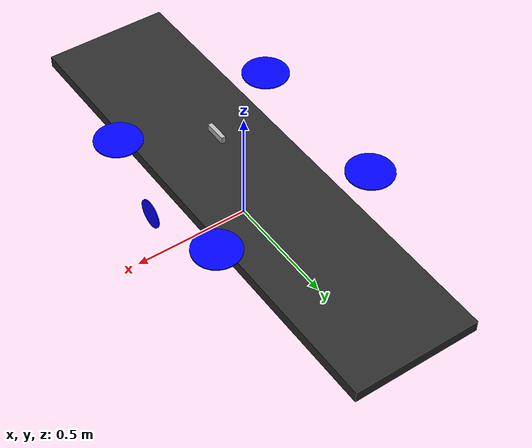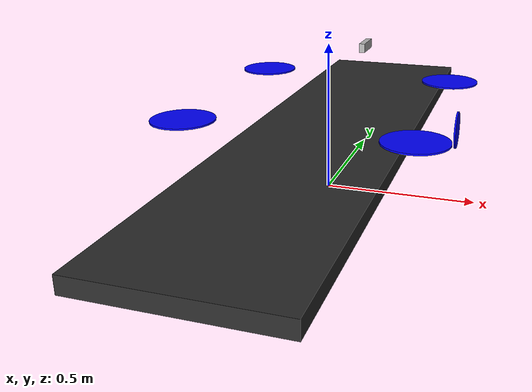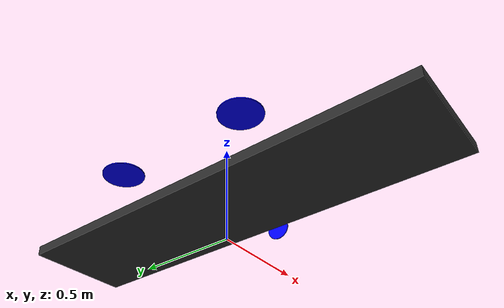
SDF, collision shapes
<?xml version="1.0"?>
<sdf version='1.10'>
  <model name='CAU_vtol'>
    <pose>0 0 0.246 0 0 0</pose>
    <include merge='true'>
      <uri>model://OakD-Lite</uri>
      <pose>.12 .03 .242 0 0 0</pose>
    </include>
    <joint name="CameraJoint" type="fixed">
      <parent>base_link</parent>
      <child>OakD-Lite/base_link</child>
      <pose relative_to="base_link">.12 .03 .242 0 0 0</pose>
    </joint>
    <link name='base_link'>
      <pose>0 0 0 0 0 0</pose>
      <inertial>
        <pose>0 0 0 0 0 0</pose>
        <mass>7</mass>
        <inertia>
          <ixx>1.036586375</ixx>
          <ixy>0.025481228</ixy>
          <ixz>0.04139701</ixz>
          <iyy>0.684859918</iyy>
          <iyz>-0.261749959</iyz>
          <izz>1.287945506</izz>
        </inertia>
      </inertial>
      <collision name='base_link_collision'>
        <pose>0 0 -0.07 0 0 0</pose>
        <geometry>
          <box>
            <size>0.55 2.144 0.05</size>
          </box>
        </geometry>
        <surface>
          <contact>
            <ode>
              <kp>100000</kp>
              <kd>1.0</kd>
              <max_vel>0.1</max_vel>
              <min_depth>0.001</min_depth>
            </ode>
          </contact>
          <friction>
            <ode/>
          </friction>
        </surface>
      </collision>
      <visual name='base_link_visual'>
        <pose>0.13 0 0 0 0 3.1415926536</pose>
        <geometry>
          <mesh>
            <scale>1 1 1</scale>
            <uri>model://CAU_vtol/meshes/test.dae</uri>
          </mesh>
        </geometry>
        <material>
          <ambient>.175 .175 .175 1.0</ambient>
          <diffuse>.175 .175 .175 1.0</diffuse>
        </material>
      </visual>

      <gravity>1</gravity>
      <velocity_decay/>
      <self_collide>0</self_collide>
       <sensor name="imu_sensor" type="imu">
        <always_on>1</always_on>
        <update_rate>250</update_rate>
        <imu>
          <angular_velocity>
            <x>
              <noise type="gaussian">
                <mean>0</mean>
                <stddev>0.0003394</stddev>
                <dynamic_bias_stddev>3.8785e-05</dynamic_bias_stddev>
                <dynamic_bias_correlation_time>1000</dynamic_bias_correlation_time>
              </noise>
            </x>
            <y>
              <noise type="gaussian">
                <mean>0</mean>
                <stddev>0.0003394</stddev>
                <dynamic_bias_stddev>3.8785e-05</dynamic_bias_stddev>
                <dynamic_bias_correlation_time>1000</dynamic_bias_correlation_time>
              </noise>
            </y>
            <z>
              <noise type="gaussian">
                <mean>0</mean>
                <stddev>0.0003394</stddev>
                <dynamic_bias_stddev>3.8785e-05</dynamic_bias_stddev>
                <dynamic_bias_correlation_time>1000</dynamic_bias_correlation_time>
              </noise>
            </z>
          </angular_velocity>
          <linear_acceleration>
            <x>
              <noise type="gaussian">
                <mean>0</mean>
                <stddev>0.004</stddev>
                <dynamic_bias_stddev>0.006</dynamic_bias_stddev>
                <dynamic_bias_correlation_time>300</dynamic_bias_correlation_time>
              </noise>
            </x>
            <y>
              <noise type="gaussian">
                <mean>0</mean>
                <stddev>0.004</stddev>
                <dynamic_bias_stddev>0.006</dynamic_bias_stddev>
                <dynamic_bias_correlation_time>300</dynamic_bias_correlation_time>
              </noise>
            </y>
            <z>
              <noise type="gaussian">
                <mean>0</mean>
                <stddev>0.004</stddev>
                <dynamic_bias_stddev>0.006</dynamic_bias_stddev>
                <dynamic_bias_correlation_time>300</dynamic_bias_correlation_time>
              </noise>
            </z>
          </linear_acceleration>
        </imu>
      </sensor>
      <sensor name="air_pressure_sensor" type="air_pressure">
        <always_on>1</always_on>
        <update_rate>50</update_rate>
        <air_pressure>
          <pressure>
            <noise type="gaussian">
              <mean>0</mean>
              <stddev>0.01</stddev>
            </noise>
          </pressure>
        </air_pressure>
      </sensor>
      <sensor name="navsat_sensor" type="navsat">
        <always_on>1</always_on>
        <update_rate>30</update_rate>
      </sensor>
      <sensor name="air_speed" type="air_speed">
        <always_on>1</always_on>
        <update_rate>30</update_rate>
        <visualize>true</visualize>
        <topic>air_pressure</topic>
        <enable_metrics>true</enable_metrics>
        <air_speed>
          <pressure>
            <noise type="gaussian">
              <mean>0.2</mean>
              <stddev>0.1</stddev>
            </noise>
          </pressure>
        </air_speed>
      </sensor>
    </link>
    <link name='rotor_0'>
      <pose>0.357 -0.353 0.07 0 0 0</pose>
      <inertial>
        <pose>0 0 0 0 0 0</pose>
        <mass>0.298</mass>
        <inertia>
          <ixx>1.57454637e-04</ixx>
          <ixy>1.3475028e-05</ixy>
          <ixz>-2.225054e-06</ixz>
          <iyy>7.7133057e-05</iyy>
          <iyz>6.231596e-06</iyz>
          <izz>1.60905765e-04</izz>
        </inertia>
      </inertial>
      <collision name='rotor_0_collision'>
        <pose>0 0 0 0 0 0</pose>
        <geometry>
          <cylinder>
            <length>0.005</length>
            <radius>0.1</radius>
          </cylinder>
        </geometry>
        <surface>
          <contact>
            <ode/>
          </contact>
          <friction>
            <ode/>
          </friction>
        </surface>
      </collision>
      <visual name='rotor_0_visual'>
        <pose>0 0 0 0 0 0</pose>
        <geometry>
          <mesh>
            <scale>1 1 1</scale>
            <uri>model://CAU_vtol/meshes/iris_prop_ccw.dae</uri>
          </mesh>
        </geometry>
        <material>
          <ambient>0 0 1 1.0</ambient>
          <diffuse>0 0 1 1.0</diffuse>
        </material>
      </visual>
      <gravity>1</gravity>
      <velocity_decay/>
      <self_collide>0</self_collide>
    </link>
    <joint name='rotor_0_joint' type='revolute'>
      <child>rotor_0</child>
      <parent>base_link</parent>
      <axis>
        <xyz>0 0 1</xyz>
        <limit>
          <lower>-1e+16</lower>
          <upper>1e+16</upper>
        </limit>
        <dynamics>
          <spring_reference>0</spring_reference>
          <spring_stiffness>0</spring_stiffness>
        </dynamics>
      </axis>
    </joint>
    <link name='rotor_1'>
      <pose>-0.35 0.347 0.07 0 0 0</pose>
      <inertial>
        <pose>0 0 0 0 0 0</pose>
        <mass>0.298</mass>
        <inertia>
          <ixx>1.57454637e-04</ixx>
          <ixy>1.3475028e-05</ixy>
          <ixz>-2.225054e-06</ixz>
          <iyy>7.7133057e-05</iyy>
          <iyz>6.231596e-06</iyz>
          <izz>1.60905765e-04</izz>
        </inertia>
      </inertial>
      <collision name='rotor_1_collision'>
        <pose>0 0 0 0 0 0</pose>
        <geometry>
          <cylinder>
            <length>0.005</length>
            <radius>0.1</radius>
          </cylinder>
        </geometry>
        <surface>
          <contact>
            <ode/>
          </contact>
          <friction>
            <ode/>
          </friction>
        </surface>
      </collision>
      <visual name='rotor_1_visual'>
        <pose>0 0 0 0 0 0</pose>
        <geometry>
          <mesh>
            <scale>1 1 1</scale>
            <uri>model://CAU_vtol/meshes/iris_prop_ccw.dae</uri>
          </mesh>
        </geometry>
        <material>
          <ambient>0 0 1 1.0</ambient>
          <diffuse>0 0 1 1.0</diffuse>
        </material>
      </visual>
      <gravity>1</gravity>
      <velocity_decay/>
      <self_collide>0</self_collide>
    </link>
    <joint name='rotor_1_joint' type='revolute'>
      <child>rotor_1</child>
      <parent>base_link</parent>
      <axis>
        <xyz>0 0 1</xyz>
        <limit>
          <lower>-1e+16</lower>
          <upper>1e+16</upper>
        </limit>
        <dynamics>
          <spring_reference>0</spring_reference>
          <spring_stiffness>0</spring_stiffness>
        </dynamics>
      </axis>
    </joint>
    <link name='rotor_2'>
      <pose>0.357 0.344 0.07 0 0 0</pose>
      <inertial>
        <pose>0 0 0 0 0 0</pose>
        <mass>0.298</mass>
        <inertia>
          <ixx>1.57454637e-04</ixx>
          <ixy>1.3475028e-05</ixy>
          <ixz>-2.225054e-06</ixz>
          <iyy>7.7133057e-05</iyy>
          <iyz>6.231596e-06</iyz>
          <izz>1.60905765e-04</izz>
        </inertia>
      </inertial>
      <collision name='rotor_2_collision'>
        <pose>0 0 0 0 0 0</pose>
        <geometry>
          <cylinder>
            <length>0.005</length>
            <radius>0.1</radius>
          </cylinder>
        </geometry>
        <surface>
          <contact>
            <ode/>
          </contact>
          <friction>
            <ode/>
          </friction>
        </surface>
      </collision>
      <visual name='rotor_2_visual'>
        <pose>0 0 0 0 0 0</pose>
        <geometry>
          <mesh>
            <scale>1 1 1</scale>
            <uri>model://CAU_vtol/meshes/iris_prop_ccw.dae</uri>
          </mesh>
        </geometry>
        <material>
          <ambient>0 0 1 1.0</ambient>
          <diffuse>0 0 1 1.0</diffuse>
        </material>
      </visual>
      <gravity>1</gravity>
      <velocity_decay/>
      <self_collide>0</self_collide>
    </link>
    <joint name='rotor_2_joint' type='revolute'>
      <child>rotor_2</child>
      <parent>base_link</parent>
      <axis>
        <xyz>0 0 1</xyz>
        <limit>
          <lower>-1e+16</lower>
          <upper>1e+16</upper>
        </limit>
        <dynamics>
          <spring_reference>0</spring_reference>
          <spring_stiffness>0</spring_stiffness>
        </dynamics>
      </axis>
    </joint>
    <link name='rotor_3'>
      <pose>-0.352 -0.353 0.07 0 0 0</pose>
      <inertial>
        <pose>0 0 0 0 0 0</pose>
        <mass>0.298</mass>
        <inertia>
          <ixx>1.57454637e-04</ixx>
          <ixy>1.3475028e-05</ixy>
          <ixz>-2.225054e-06</ixz>
          <iyy>7.7133057e-05</iyy>
          <iyz>6.231596e-06</iyz>
          <izz>1.60905765e-04</izz>
        </inertia>
      </inertial>
      <collision name='rotor_3_collision'>
        <pose>0 0 0 0 0 0</pose>
        <geometry>
          <cylinder>
            <length>0.005</length>
            <radius>0.1</radius>
          </cylinder>
        </geometry>
        <surface>
          <contact>
            <ode/>
          </contact>
          <friction>
            <ode/>
          </friction>
        </surface>
      </collision>
      <visual name='rotor_3_visual'>
        <pose>0 0 0 0 0 0</pose>
        <geometry>
          <mesh>
            <scale>1 1 1</scale>
            <uri>model://CAU_vtol/meshes/iris_prop_ccw.dae</uri>
          </mesh>
        </geometry>
        <material>
          <ambient>0 0 1 1.0</ambient>
          <diffuse>0 0 1 1.0</diffuse>
        </material>
      </visual>
      <gravity>1</gravity>
      <velocity_decay/>
      <self_collide>0</self_collide>
    </link>
    <joint name='rotor_3_joint' type='revolute'>
      <child>rotor_3</child>
      <parent>base_link</parent>
      <axis>
        <xyz>0 0 1</xyz>
        <limit>
          <lower>-1e+16</lower>
          <upper>1e+16</upper>
        </limit>
        <dynamics>
          <spring_reference>0</spring_reference>
          <spring_stiffness>0</spring_stiffness>
        </dynamics>
      </axis>
    </joint>

    <link name='rotor_puller'>
      <pose>0.47 0 0 0 1.57 0</pose>
      <inertial>
        <pose>0 0 0 0 0 0</pose>
        <mass>0.298</mass>
        <inertia>
          <ixx>1.57454637e-04</ixx>
          <ixy>1.3475028e-05</ixy>
          <ixz>-2.225054e-06</ixz>
          <iyy>7.7133057e-05</iyy>
          <iyz>6.231596e-06</iyz>
          <izz>1.60905765e-04</izz>
        </inertia>
      </inertial>
      <collision name='rotor_puller_collision'>
        <pose>0.0 0 -0.04 0 0 0</pose>
        <geometry>
          <cylinder>
            <length>0.005</length>
            <radius>0.06</radius>
          </cylinder>
        </geometry>
        <surface>
          <contact>
            <ode/>
          </contact>
          <friction>
            <ode/>
          </friction>
        </surface>
      </collision>
      <visual name='rotor_puller_visual'>
        <pose>0.02 0 -0.04 0 0 0</pose>
        <geometry>
          <mesh>
            <scale>0.8 0.8 0.8</scale>
            <uri>model://CAU_vtol/meshes/iris_prop_ccw.dae</uri>
          </mesh>
        </geometry>
        <material>
          <ambient>0 0 1 1.0</ambient>
          <diffuse>0 0 1 1.0</diffuse>
        </material>
      </visual>
      <gravity>1</gravity>
      <velocity_decay/>
      <self_collide>0</self_collide>
    </link>
    <joint name='rotor_puller_joint' type='revolute'>
      <pose>0.0 0 0.0 0 -1.57 0</pose>
      <child>rotor_puller</child>
      <parent>base_link</parent>
      <axis>
        <xyz>1 0 0</xyz>
        <limit>
          <lower>-1e+16</lower>
          <upper>1e+16</upper>
        </limit>
        <dynamics>
          <spring_reference>0</spring_reference>
          <spring_stiffness>0</spring_stiffness>
        </dynamics>
      </axis>
    </joint>

    <link name="left_aileron">
      <inertial>
        <mass>0.01</mass>
        <inertia>
          <ixx>1.02071386e-04</ixx>
          <ixy>5.455779e-06</ixy>
          <iyy>3.494873e-06</iyy>
          <ixz>-2.22915e-07</ixz>
          <iyz>-9.2883e-07</iyz>
          <izz>1.0353567e-04</izz>
        </inertia>
        <pose>0 0.3 0 0.00 0 0.0</pose>
      </inertial>

    </link>
    <link name="right_aileron">
      <inertial>
        <mass>0.01</mass>
        <inertia>
          <ixx>1.02071386e-04</ixx>
          <ixy>5.455779e-06</ixy>
          <iyy>3.494873e-06</iyy>
          <ixz>-2.22915e-07</ixz>
          <iyz>-9.2883e-07</iyz>
          <izz>1.0353567e-04</izz>
        </inertia>
        <pose>0 0.3 0 0.00 0 0.0</pose>
      </inertial>

    </link>
    <link name="elevator">
      <inertial>
        <mass>0.006</mass>
        <inertia>
          <ixx>4.5813687e-05</ixx>
          <ixy>2.0442566e-05</ixy>
          <iyy>7.4952191e-05</iyy>
          <ixz>-4.23333e-07</ixz>
          <iyz>2.12496e-07</iyz>
          <izz>5.0807083e-05</izz>
        </inertia>
        <pose> -0.5 0 0 0.00 0 0.0</pose>
      </inertial>
    </link>
    <joint name='servo_0' type='revolute'>
      <parent>base_link</parent>
      <child>left_aileron</child>
      <pose>-0.18 0.6 -0.005 0 0 0.265</pose>
      <axis>
        <xyz>0 1 0</xyz>
        <limit>
          <lower>-0.53</lower>
          <upper>0.53</upper>
        </limit>
        <dynamics>
          <damping>1.000</damping>
        </dynamics>
      </axis>
      <physics>
        <ode>
          <implicit_spring_damper>1</implicit_spring_damper>
        </ode>
      </physics>
    </joint>
    <joint name='servo_1' type='revolute'>
      <parent>base_link</parent>
      <child>right_aileron</child>
      <pose>-0.18 -0.6 -0.005 0 0 -0.265</pose>
      <axis>
        <xyz>0 1 0</xyz>
        <limit>
          <lower>-0.53</lower>
          <upper>0.53</upper>
        </limit>
        <dynamics>
          <damping>1.000</damping>
        </dynamics>
      </axis>
      <physics>
        <ode>
          <implicit_spring_damper>1</implicit_spring_damper>
        </ode>
      </physics>
    </joint>
    <joint name='servo_2' type='revolute'>
      <parent>base_link</parent>
      <child>elevator</child>
      <pose> -0.5 0 0 0 0 0</pose>
      <axis>
        <xyz>0 1 0</xyz>
        <limit>
          <!-- -30/+30 deg. -->
          <lower>-0.53</lower>
          <upper>0.53</upper>
        </limit>
        <dynamics>
          <damping>1.000</damping>
        </dynamics>
      </axis>
      <physics>
        <ode>
          <implicit_spring_damper>1</implicit_spring_damper>
        </ode>
      </physics>
    </joint>
    <plugin filename="gz-sim-lift-drag-system" name="gz::sim::systems::LiftDrag">
      <a0>0.05984281113</a0>
      <cla>4.752798721</cla>
      <cda>0.6417112299</cda>
      <cma>0.0</cma>
      <alpha_stall>0.3391428111</alpha_stall>
      <cla_stall>-3.85</cla_stall>
      <cda_stall>-0.9233984055</cda_stall>
      <cma_stall>0</cma_stall>
      <cp>-0.05 0.3 0.05</cp>
      <area>	0.475322 </area>
      <air_density>1.2041</air_density>
      <forward>1 0 0</forward>
      <upward>0 0 1</upward>
      <link_name>base_link</link_name>
      <control_joint_name>servo_0</control_joint_name>
      <control_joint_rad_to_cl>-1.0</control_joint_rad_to_cl>
    </plugin>
    <plugin
      filename="gz-sim-joint-position-controller-system" name="gz::sim::systems::JointPositionController">
      <joint_name>servo_0</joint_name>
      <sub_topic>servo_0</sub_topic>
    </plugin>
    <plugin filename="gz-sim-lift-drag-system" name="gz::sim::systems::LiftDrag">
      <a0>0.05984281113</a0>
      <cla>4.752798721</cla>
      <cda>0.6417112299</cda>
      <cma>0.0</cma>
      <alpha_stall>0.3391428111</alpha_stall>
      <cla_stall>-3.85</cla_stall>
      <cda_stall>-0.9233984055</cda_stall>
      <cma_stall>0</cma_stall>
      <cp>-0.05 -0.3 0.05</cp>
      <area>0.50</area>
      <air_density>1.2041</air_density>
      <forward>1 0 0</forward>
      <upward>0 0 1</upward>
      <link_name>base_link</link_name>
      <control_joint_name>servo_1</control_joint_name>
      <control_joint_rad_to_cl>-1.0</control_joint_rad_to_cl>
    </plugin>
    <plugin
      filename="gz-sim-joint-position-controller-system" name="gz::sim::systems::JointPositionController">
      <joint_name>servo_1</joint_name>
      <sub_topic>servo_1</sub_topic>
    </plugin>
    <plugin filename="gz-sim-lift-drag-system" name="gz::sim::systems::LiftDrag">
      <a0>-0.2</a0>
      <cla>4.752798721</cla>
      <cda>0.6417112299</cda>
      <cma>0.0</cma>
      <alpha_stall>0.3391428111</alpha_stall>
      <cla_stall>-3.85</cla_stall>
      <cda_stall>-0.9233984055</cda_stall>
      <cma_stall>0</cma_stall>
      <cp>-0.5 0 0</cp>
      <area>0.01</area>
      <air_density>1.2041</air_density>
      <forward>1 0 0</forward>
      <upward>0 0 1</upward>
      <link_name>base_link</link_name>
      <control_joint_name>servo_2</control_joint_name>
          <control_joint_name>servo_2</control_joint_name>
      <control_joint_rad_to_cl>-12.0</control_joint_rad_to_cl>
    </plugin>
    <plugin
      filename="gz-sim-joint-position-controller-system" name="gz::sim::systems::JointPositionController">
      <joint_name>servo_2</joint_name>
      <sub_topic>servo_2</sub_topic>
    </plugin>
    <plugin filename="gz-sim-multicopter-motor-model-system" name="gz::sim::systems::MulticopterMotorModel">
      <jointName>rotor_0_joint</jointName>
      <linkName>rotor_0</linkName>
      <turningDirection>ccw</turningDirection>
      <timeConstantUp>0.0125</timeConstantUp>
      <timeConstantDown>0.025</timeConstantDown>
      <maxRotVelocity>9500</maxRotVelocity>
      <motorConstant>0.03230515437788739</motorConstant>
      <momentConstant>0.016464304457782276</momentConstant>
      <commandSubTopic>command/motor_speed</commandSubTopic>
      <motorNumber>0</motorNumber>
      <rotorDragCoefficient>0.000106428</rotorDragCoefficient>
      <rollingMomentCoefficient>1e-06</rollingMomentCoefficient>
      <rotorVelocitySlowdownSim>20</rotorVelocitySlowdownSim>
      <motorType>velocity</motorType>
    </plugin>
    <plugin filename="gz-sim-multicopter-motor-model-system" name="gz::sim::systems::MulticopterMotorModel">
      <jointName>rotor_1_joint</jointName>
      <linkName>rotor_1</linkName>
      <turningDirection>ccw</turningDirection>
      <timeConstantUp>0.0125</timeConstantUp>
      <timeConstantDown>0.025</timeConstantDown>
      <maxRotVelocity>1500</maxRotVelocity>
      <motorConstant>2e-05</motorConstant>
      <momentConstant>0.06</momentConstant>
      <commandSubTopic>command/motor_speed</commandSubTopic>
      <motorNumber>1</motorNumber>
      <rotorDragCoefficient>0.000106428</rotorDragCoefficient>
      <rollingMomentCoefficient>1e-06</rollingMomentCoefficient>
      <rotorVelocitySlowdownSim>20</rotorVelocitySlowdownSim>
      <motorType>velocity</motorType>
    </plugin>
    <plugin
      filename="gz-sim-multicopter-motor-model-system"
      name="gz::sim::systems::MulticopterMotorModel">
      <jointName>rotor_2_joint</jointName>
      <linkName>rotor_2</linkName>
      <turningDirection>cw</turningDirection>
      <timeConstantUp>0.0125</timeConstantUp>
      <timeConstantDown>0.025</timeConstantDown>
      <maxRotVelocity>1500</maxRotVelocity>
      <motorConstant>2e-05</motorConstant>
      <momentConstant>0.06</momentConstant>
      <commandSubTopic>command/motor_speed</commandSubTopic>
      <motorNumber>2</motorNumber>
      <rotorDragCoefficient>0.000106428</rotorDragCoefficient>
      <rollingMomentCoefficient>1e-06</rollingMomentCoefficient>
      <rotorVelocitySlowdownSim>20</rotorVelocitySlowdownSim>
      <motorType>velocity</motorType>
    </plugin>
    <plugin
      filename="gz-sim-multicopter-motor-model-system"
      name="gz::sim::systems::MulticopterMotorModel">
      <jointName>rotor_3_joint</jointName>
      <linkName>rotor_3</linkName>
      <turningDirection>cw</turningDirection>
      <timeConstantUp>0.0125</timeConstantUp>
      <timeConstantDown>0.025</timeConstantDown>
      <maxRotVelocity>1500</maxRotVelocity>
      <motorConstant>2e-05</motorConstant>
      <momentConstant>0.06</momentConstant>
      <commandSubTopic>command/motor_speed</commandSubTopic>
      <motorNumber>3</motorNumber>
      <rotorDragCoefficient>0.000106428</rotorDragCoefficient>
      <rollingMomentCoefficient>1e-06</rollingMomentCoefficient>
      <rotorVelocitySlowdownSim>20</rotorVelocitySlowdownSim>
      <motorType>velocity</motorType>
    </plugin>
    <plugin
      filename="gz-sim-multicopter-motor-model-system"
      name="gz::sim::systems::MulticopterMotorModel">
      <jointName>rotor_puller_joint</jointName>
      <linkName>rotor_puller</linkName>
      <turningDirection>cw</turningDirection>
      <timeConstantUp>0.0125</timeConstantUp>
      <timeConstantDown>0.025</timeConstantDown>
      <maxRotVelocity>3500</maxRotVelocity>
      <motorConstant>8.54858e-06</motorConstant>
      <momentConstant>0.01</momentConstant>
      <commandSubTopic>command/motor_speed</commandSubTopic>
      <motorNumber>4</motorNumber>
      <rotorDragCoefficient>0.000106428</rotorDragCoefficient>
      <rollingMomentCoefficient>1e-06</rollingMomentCoefficient>
      <rotorVelocitySlowdownSim>20</rotorVelocitySlowdownSim>
      <motorType>velocity</motorType>
    </plugin>

    <static>0</static>
  </model>
</sdf>

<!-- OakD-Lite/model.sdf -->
<sdf version='1.9'>
  <model name='OakD-Lite'>
    <pose>0 0 0 0 0 0</pose>
    <self_collide>false</self_collide>
    <static>false</static>
    <link name="camera_link">
      <inertial>
        <pose>0.00358 -0.03 .014 0 0 0</pose>
        <mass>0.061</mass>
        <inertia>
          <ixx>0.0000460804</ixx>
          <ixy>0</ixy>
          <ixz>0</ixz>
          <iyy>0.0000055421</iyy>
          <iyz>0</iyz>
          <izz>0.0000436519</izz>
        </inertia>
      </inertial>
      <visual name="OakD-Lite/visual">
        <pose>0 0 0 0 0 0</pose>
        <geometry>
          <mesh>
            <scale>1 1 1</scale>
            <uri>model://OakD-Lite/meshes/OakDLite.dae</uri>
          </mesh>
        </geometry>
      </visual>
      <collision name="OakD-Lite/collision">
        <pose>0.00358 -0.03 .014 0 0 0</pose>
        <geometry>
          <box>
            <size>0.0175 0.091 0.028</size>
          </box>
        </geometry>
      </collision>
      <sensor name="IMX214" type="camera">
        <pose>0.01233 -0.03 .01878 0 0 0</pose>
        <camera>
          <horizontal_fov>1.204</horizontal_fov>
          <image>
            <width>1920</width>
            <height>1080</height>
          </image>
          <clip>
            <near>0.1</near>
            <far>100</far>
          </clip>
        </camera>
        <always_on>1</always_on>
        <update_rate>30</update_rate>
        <visualize>true</visualize>
      </sensor>
      <sensor name="StereoOV7251" type="depth_camera">
        <pose>0.01233 -0.03 .01878 0 0 0</pose>
        <camera>
          <horizontal_fov>1.274</horizontal_fov>
          <image>
            <width>640</width>
            <height>480</height>
            <format>R_FLOAT32</format>
          </image>
          <clip>
            <near>0.2</near>
            <far>19.1</far>
          </clip>
        </camera>
        <always_on>1</always_on>
        <update_rate>30</update_rate>
        <visualize>true</visualize>
        <topic>depth_camera</topic>
      </sensor>
      <gravity>true</gravity>
      <velocity_decay />
    </link>
  </model>
</sdf>
